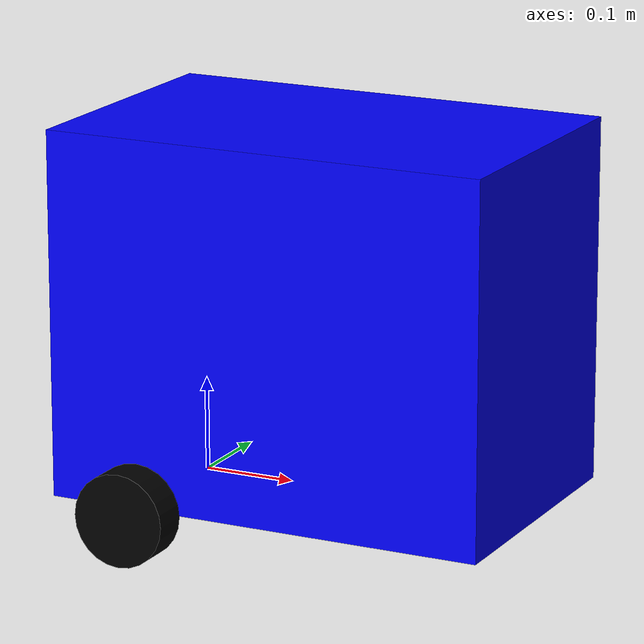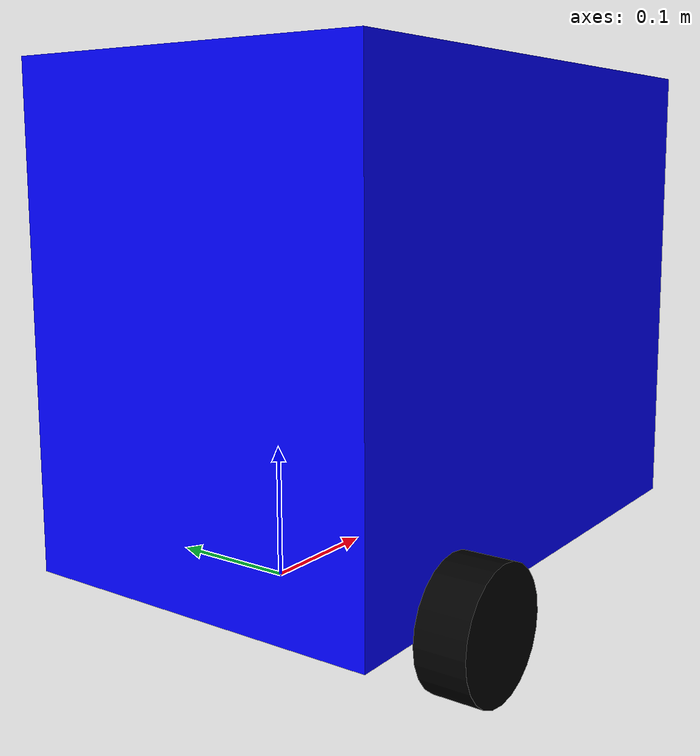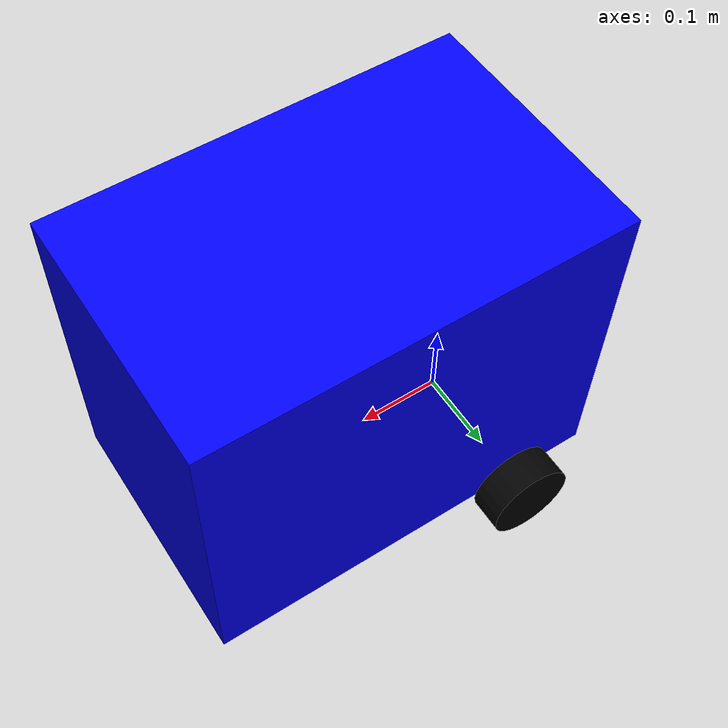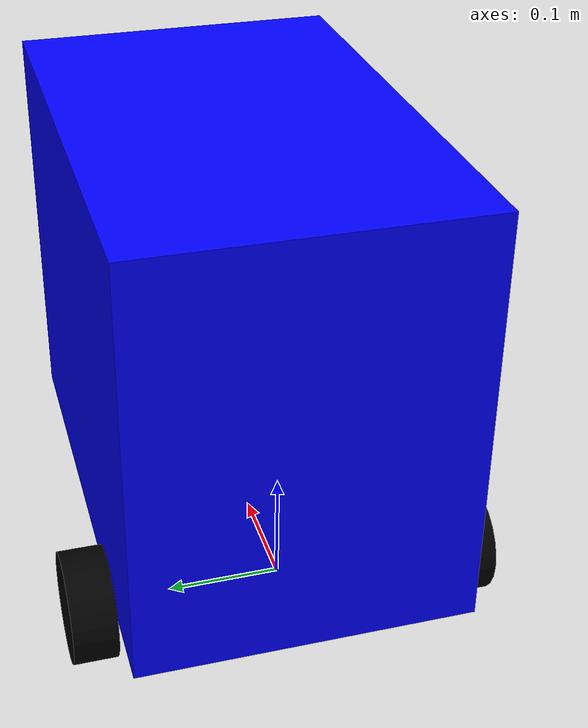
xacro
<?xml version="1.0"?>
<robot xmlns:xacro="http://www.ros.org/wiki/xacro">

  <xacro:include filename="inertial_macro.xacro" />

  <material name="white">
    <color rgba="1 1 1 1" />
  </material>

  <material name="red">
    <color rgba="1 0 0 1" />
  </material>

  <material name="green">
    <color rgba="0 1 0 1" />
  </material>

  <material name="blue">
    <color rgba="0 0 1 1" />
  </material>

  <material name="black">
    <color rgba="0 0 0 1" />
  </material>

  <!-- BASE LINK -->
  <link name="base_link" />

  <joint name="chassis_joint" type="fixed">
    <parent link="base_link" />
    <child link="chassis" />
    <origin xyz="-0.1 0 0" rpy="0 0 0" />
  </joint>

  <!-- CHASSIS LINK -->
  <link name="chassis">
    <visual>
      <origin xyz="0.24 0 0.195" />
      <geometry>
        <box size="0.48 0.305 0.39" />
      </geometry>
      <material name="blue" />
    </visual>
    <collision>
      <origin xyz="0.24 0 0.195" />
      <geometry>
        <box size="0.48 0.305 0.39" />
      </geometry>
    </collision>
    <xacro:inertial_box mass="5.0" x="0.48" y="0.305" z="0.39">
      <origin xyz="0.24 0 0.195" rpy="0 0 0" />
    </xacro:inertial_box>
  </link>

  <gazebo reference="chassis">
    <material>Gazebo/Blue</material>
  </gazebo>

  <!-- LEFT WHEEL LINK -->

  <joint name="wheel_l_joint" type="continuous">
    <parent link="base_link" />
    <child link="wheel_l" />
    <origin xyz="0.0 0.175 0.0" rpy="-${pi/2} 0 0" />
    <axis xyz="0 0 1" />
  </joint>

  <link name="wheel_l">
    <visual>
      <origin xyz="0 0 0.0" />
      <geometry>
        <cylinder radius="0.05" length="0.04" />
      </geometry>
      <material name="black" />
    </visual>
    <collision>
      <origin xyz="0 0 0.0" />
      <geometry>
        <cylinder radius="0.05" length="0.04" />
      </geometry>
    </collision>
    <xacro:inertial_cylinder mass="0.5" radius="0.05" length="0.04">
      <origin xyz="0 0 0.1" rpy="0 0 0" />
    </xacro:inertial_cylinder>
  </link>

  <gazebo reference="wheel_l">
    <material>Gazebo/Black</material>
  </gazebo>

  <!-- RIGHT WHEEL LINK -->

  <joint name="wheel_r_joint" type="continuous">
    <parent link="base_link" />
    <child link="wheel_r" />
    <origin xyz="0.0 -0.175 0.0" rpy="${pi/2} 0 0" />
    <axis xyz="0 0 -1" />
  </joint>

  <link name="wheel_r">
    <visual>
      <origin xyz="0 0 0.0" />
      <geometry>
        <cylinder radius="0.05" length="0.04" />
      </geometry>
      <material name="black" />
    </visual>
    <collision>
      <origin xyz="0 0 0.0" />
      <geometry>
        <cylinder radius="0.05" length="0.04" />
      </geometry>
    </collision>
    <xacro:inertial_cylinder mass="0.5" radius="0.05" length="0.04" >
      <origin xyz="0 0 0.1" rpy="0 0 0" />
    </xacro:inertial_cylinder>
  </link>

  <gazebo reference="wheel_r">
    <material>Gazebo/Black</material>
  </gazebo>

  <!-- CASTER WHEEL LINK -->

  <joint name="wheel_c_joint" type="fixed">
    <parent link="base_link" />
    <child link="wheel_c" />
    <origin xyz="0.24 0 0" />
  </joint>

  <link name="wheel_c">
    <visual>
      <geometry>
        <sphere radius="0.05" />
      </geometry>
      <material name="red" />
    </visual>
    <collision>
      <geometry>
        <sphere radius="0.05" />
      </geometry>
    </collision>
    <xacro:inertial_sphere mass="0.5" radius="0.05">
      <origin xyz="0 0 0" rpy="0 0 0" />
    </xacro:inertial_sphere>
  </link>

  <gazebo reference="wheel_c">
    <material>Gazebo/Red</material>
    <mu1 value="0.001"/>
    <mu2 value="0.001"/>
  </gazebo>

</robot>
